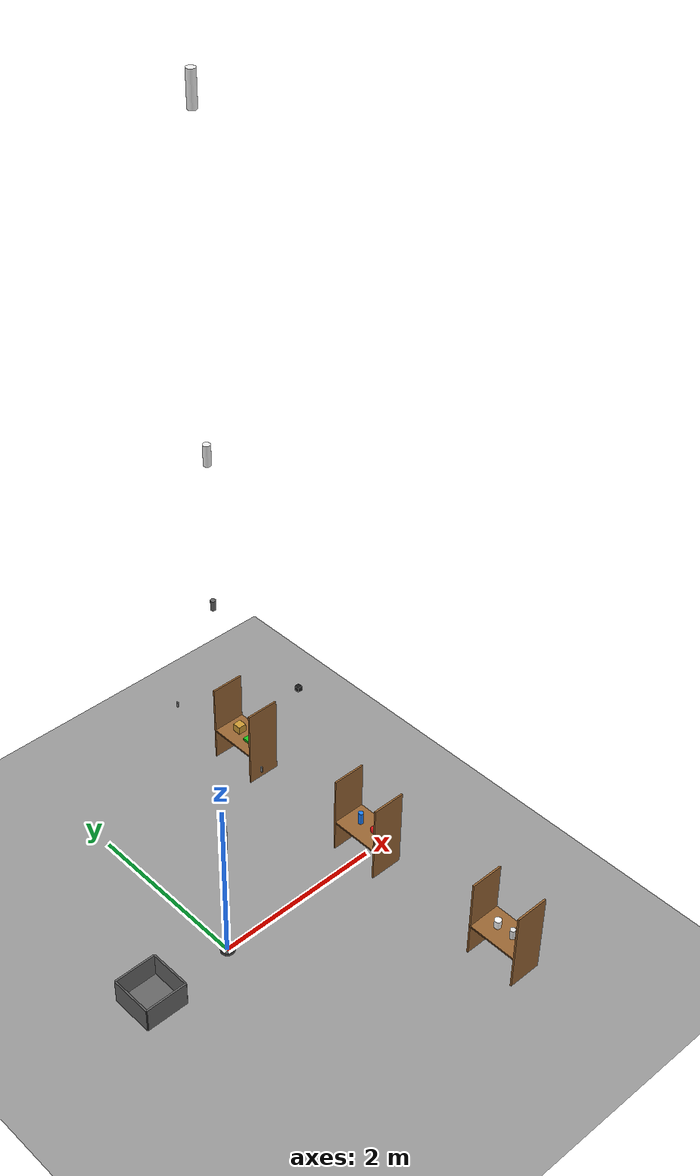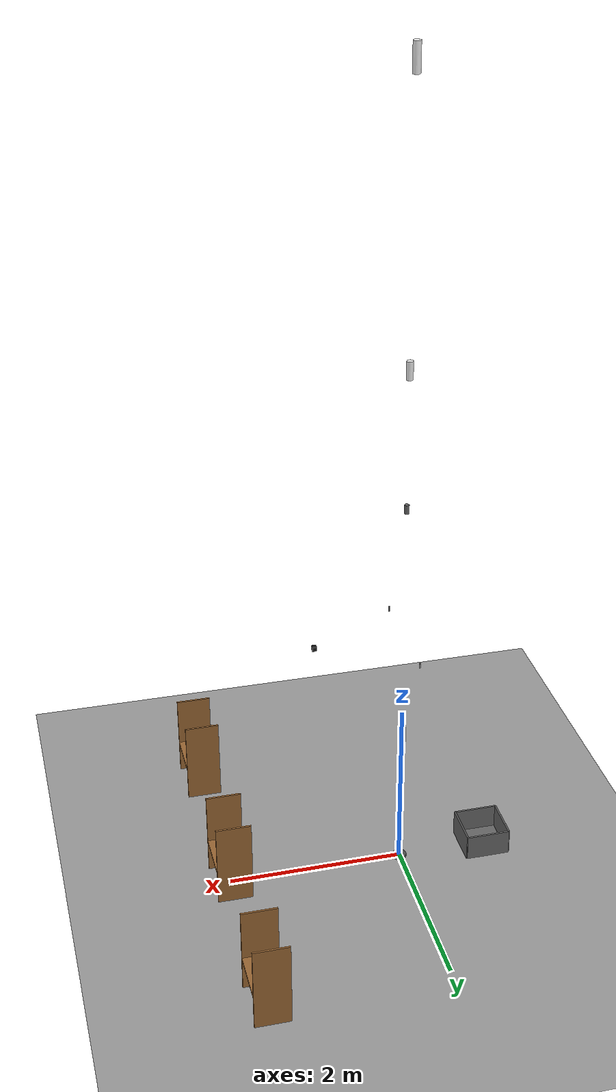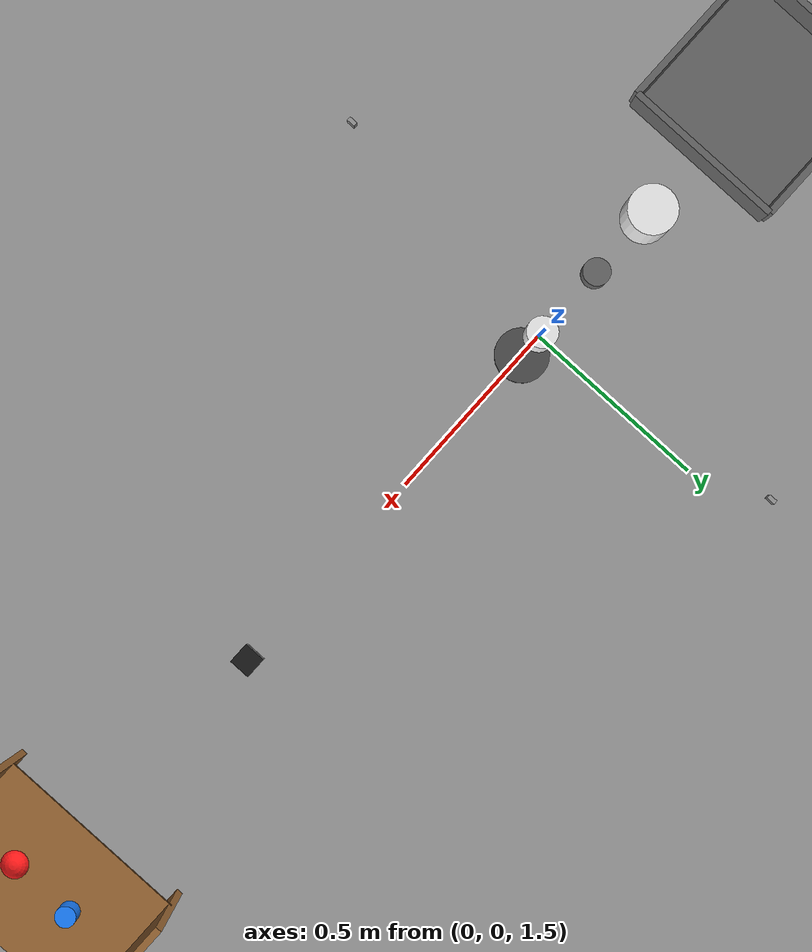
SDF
<?xml version="1.0" ?>
<sdf version="1.9">
  <world name="warehouse">

    <!-- Physics -->
    <physics name="1ms" type="dart">
      <max_step_size>0.001</max_step_size>
      <real_time_factor>1.0</real_time_factor>
    </physics>

    <!-- Plugins -->
    <plugin filename="gz-sim-physics-system" name="gz::sim::systems::Physics"/>
    <plugin filename="gz-sim-scene-broadcaster-system" name="gz::sim::systems::SceneBroadcaster"/>
    <plugin filename="gz-sim-sensors-system" name="gz::sim::systems::Sensors">
      <render_engine>ogre2</render_engine>
    </plugin>
    <plugin filename="gz-sim-user-commands-system" name="gz::sim::systems::UserCommands"/>

    <!-- Lighting -->
    <light type="directional" name="warehouse_light">
      <cast_shadows>true</cast_shadows>
      <pose>0 0 5 0 0 0</pose>
      <diffuse>0.9 0.9 0.9 1</diffuse>
      <specular>0.3 0.3 0.3 1</specular>
      <direction>-0.5 0.1 -0.9</direction>
    </light>

    <light type="point" name="fill_light">
      <pose>0 0 3 0 0 0</pose>
      <diffuse>0.4 0.4 0.4 1</diffuse>
      <specular>0.1 0.1 0.1 1</specular>
      <attenuation>
        <range>10</range>
        <constant>0.5</constant>
        <linear>0.01</linear>
        <quadratic>0.001</quadratic>
      </attenuation>
    </light>

    <!-- Ground plane -->
    <model name="ground_plane">
      <static>true</static>
      <link name="link">
        <collision name="collision">
          <geometry>
            <plane><normal>0 0 1</normal><size>10 10</size></plane>
          </geometry>
        </collision>
        <visual name="visual">
          <geometry>
            <plane><normal>0 0 1</normal><size>10 10</size></plane>
          </geometry>
          <material>
            <ambient>0.6 0.6 0.6 1</ambient>
            <diffuse>0.6 0.6 0.6 1</diffuse>
          </material>
        </visual>
      </link>
    </model>

    <!-- ==================== SHELF A ==================== -->
    <model name="shelf_A">
      <static>true</static>
      <pose>2.0 0.0 0.0 0 0 0</pose>
      <link name="shelf_body">
        <!-- Left side panel -->
        <visual name="left_panel">
          <pose>0 -0.3 0.5 0 0 0</pose>
          <geometry><box><size>0.4 0.02 1.0</size></box></geometry>
          <material><ambient>0.5 0.3 0.1 1</ambient><diffuse>0.6 0.4 0.2 1</diffuse></material>
        </visual>
        <collision name="left_panel_col">
          <pose>0 -0.3 0.5 0 0 0</pose>
          <geometry><box><size>0.4 0.02 1.0</size></box></geometry>
        </collision>
        <!-- Right side panel -->
        <visual name="right_panel">
          <pose>0 0.3 0.5 0 0 0</pose>
          <geometry><box><size>0.4 0.02 1.0</size></box></geometry>
          <material><ambient>0.5 0.3 0.1 1</ambient><diffuse>0.6 0.4 0.2 1</diffuse></material>
        </visual>
        <collision name="right_panel_col">
          <pose>0 0.3 0.5 0 0 0</pose>
          <geometry><box><size>0.4 0.02 1.0</size></box></geometry>
        </collision>
        <!-- Shelf surface -->
        <visual name="shelf_surface">
          <pose>0 0 0.4 0 0 0</pose>
          <geometry><box><size>0.4 0.6 0.02</size></box></geometry>
          <material><ambient>0.5 0.3 0.1 1</ambient><diffuse>0.6 0.4 0.2 1</diffuse></material>
        </visual>
        <collision name="shelf_surface_col">
          <pose>0 0 0.4 0 0 0</pose>
          <geometry><box><size>0.4 0.6 0.02</size></box></geometry>
        </collision>
      </link>
    </model>

    <!-- ==================== SHELF B ==================== -->
    <model name="shelf_B">
      <static>true</static>
      <pose>2.0 2.0 0.0 0 0 0</pose>
      <link name="shelf_body">
        <visual name="left_panel">
          <pose>0 -0.3 0.5 0 0 0</pose>
          <geometry><box><size>0.4 0.02 1.0</size></box></geometry>
          <material><ambient>0.5 0.3 0.1 1</ambient><diffuse>0.6 0.4 0.2 1</diffuse></material>
        </visual>
        <collision name="left_panel_col">
          <pose>0 -0.3 0.5 0 0 0</pose>
          <geometry><box><size>0.4 0.02 1.0</size></box></geometry>
        </collision>
        <visual name="right_panel">
          <pose>0 0.3 0.5 0 0 0</pose>
          <geometry><box><size>0.4 0.02 1.0</size></box></geometry>
          <material><ambient>0.5 0.3 0.1 1</ambient><diffuse>0.6 0.4 0.2 1</diffuse></material>
        </visual>
        <collision name="right_panel_col">
          <pose>0 0.3 0.5 0 0 0</pose>
          <geometry><box><size>0.4 0.02 1.0</size></box></geometry>
        </collision>
        <visual name="shelf_surface">
          <pose>0 0 0.4 0 0 0</pose>
          <geometry><box><size>0.4 0.6 0.02</size></box></geometry>
          <material><ambient>0.5 0.3 0.1 1</ambient><diffuse>0.6 0.4 0.2 1</diffuse></material>
        </visual>
        <collision name="shelf_surface_col">
          <pose>0 0 0.4 0 0 0</pose>
          <geometry><box><size>0.4 0.6 0.02</size></box></geometry>
        </collision>
      </link>
    </model>

    <!-- ==================== SHELF C ==================== -->
    <model name="shelf_C">
      <static>true</static>
      <pose>2.0 -2.0 0.0 0 0 0</pose>
      <link name="shelf_body">
        <visual name="left_panel">
          <pose>0 -0.3 0.5 0 0 0</pose>
          <geometry><box><size>0.4 0.02 1.0</size></box></geometry>
          <material><ambient>0.5 0.3 0.1 1</ambient><diffuse>0.6 0.4 0.2 1</diffuse></material>
        </visual>
        <collision name="left_panel_col">
          <pose>0 -0.3 0.5 0 0 0</pose>
          <geometry><box><size>0.4 0.02 1.0</size></box></geometry>
        </collision>
        <visual name="right_panel">
          <pose>0 0.3 0.5 0 0 0</pose>
          <geometry><box><size>0.4 0.02 1.0</size></box></geometry>
          <material><ambient>0.5 0.3 0.1 1</ambient><diffuse>0.6 0.4 0.2 1</diffuse></material>
        </visual>
        <collision name="right_panel_col">
          <pose>0 0.3 0.5 0 0 0</pose>
          <geometry><box><size>0.4 0.02 1.0</size></box></geometry>
        </collision>
        <visual name="shelf_surface">
          <pose>0 0 0.4 0 0 0</pose>
          <geometry><box><size>0.4 0.6 0.02</size></box></geometry>
          <material><ambient>0.5 0.3 0.1 1</ambient><diffuse>0.6 0.4 0.2 1</diffuse></material>
        </visual>
        <collision name="shelf_surface_col">
          <pose>0 0 0.4 0 0 0</pose>
          <geometry><box><size>0.4 0.6 0.02</size></box></geometry>
        </collision>
      </link>
    </model>

    <!-- ==================== OBJECTS ==================== -->

    <!-- Apple (red sphere) on Shelf A slot 0 -->
    <model name="apple">
      <pose>2.0 -0.1 0.45 0 0 0</pose>
      <link name="link">
        <inertial>
          <mass>0.2</mass>
          <inertia>
            <ixx>0.000128</ixx><iyy>0.000128</iyy><izz>0.000128</izz>
          </inertia>
        </inertial>
        <collision name="collision">
          <geometry><sphere><radius>0.04</radius></sphere></geometry>
          <surface>
            <friction><ode><mu>0.8</mu><mu2>0.8</mu2></ode></friction>
          </surface>
        </collision>
        <visual name="visual">
          <geometry><sphere><radius>0.04</radius></sphere></geometry>
          <material><ambient>1.0 0.0 0.0 1</ambient><diffuse>1.0 0.1 0.1 1</diffuse></material>
        </visual>
      </link>
    </model>

    <!-- Bottle (blue cylinder) on Shelf A slot 1 -->
    <model name="bottle">
      <pose>2.0 0.1 0.485 0 0 0</pose>
      <link name="link">
        <inertial>
          <mass>0.3</mass>
          <inertia>
            <ixx>0.000338</ixx><iyy>0.000338</iyy><izz>0.000135</izz>
          </inertia>
        </inertial>
        <collision name="collision">
          <geometry><cylinder><radius>0.03</radius><length>0.15</length></cylinder></geometry>
          <surface>
            <friction><ode><mu>0.6</mu><mu2>0.6</mu2></ode></friction>
          </surface>
        </collision>
        <visual name="visual">
          <geometry><cylinder><radius>0.03</radius><length>0.15</length></cylinder></geometry>
          <material><ambient>0.0 0.5 1.0 1</ambient><diffuse>0.1 0.5 1.0 1</diffuse></material>
        </visual>
      </link>
    </model>

    <!-- Book (green box) on Shelf B slot 0 -->
    <model name="book">
      <pose>2.0 1.9 0.425 0 0 0</pose>
      <link name="link">
        <inertial>
          <mass>0.4</mass>
          <inertia>
            <ixx>0.000347</ixx><iyy>0.000817</iyy><izz>0.001067</izz>
          </inertia>
        </inertial>
        <collision name="collision">
          <geometry><box><size>0.15 0.10 0.03</size></box></geometry>
          <surface>
            <friction><ode><mu>0.7</mu><mu2>0.7</mu2></ode></friction>
          </surface>
        </collision>
        <visual name="visual">
          <geometry><box><size>0.15 0.10 0.03</size></box></geometry>
          <material><ambient>0.0 0.7 0.0 1</ambient><diffuse>0.1 0.8 0.1 1</diffuse></material>
        </visual>
      </link>
    </model>

    <!-- Box (brown box) on Shelf B slot 1 -->
    <model name="box">
      <pose>2.0 2.1 0.46 0 0 0</pose>
      <link name="link">
        <inertial>
          <mass>0.5</mass>
          <inertia>
            <ixx>0.000833</ixx><iyy>0.000833</iyy><izz>0.000833</izz>
          </inertia>
        </inertial>
        <collision name="collision">
          <geometry><box><size>0.10 0.10 0.10</size></box></geometry>
          <surface>
            <friction><ode><mu>0.7</mu><mu2>0.7</mu2></ode></friction>
          </surface>
        </collision>
        <visual name="visual">
          <geometry><box><size>0.10 0.10 0.10</size></box></geometry>
          <material><ambient>0.8 0.6 0.2 1</ambient><diffuse>0.8 0.6 0.2 1</diffuse></material>
        </visual>
      </link>
    </model>

    <!-- Can (silver cylinder) on Shelf C slot 0 -->
    <model name="can">
      <pose>2.0 -2.1 0.47 0 0 0</pose>
      <link name="link">
        <inertial>
          <mass>0.35</mass>
          <inertia>
            <ixx>0.000223</ixx><iyy>0.000223</iyy><izz>0.000158</izz>
          </inertia>
        </inertial>
        <collision name="collision">
          <geometry><cylinder><radius>0.03</radius><length>0.12</length></cylinder></geometry>
          <surface>
            <friction><ode><mu>0.5</mu><mu2>0.5</mu2></ode></friction>
          </surface>
        </collision>
        <visual name="visual">
          <geometry><cylinder><radius>0.03</radius><length>0.12</length></cylinder></geometry>
          <material><ambient>0.8 0.8 0.8 1</ambient><diffuse>0.9 0.9 0.9 1</diffuse></material>
        </visual>
      </link>
    </model>

    <!-- Cup (white cylinder) on Shelf C slot 1 -->
    <model name="cup">
      <pose>2.0 -1.9 0.46 0 0 0</pose>
      <link name="link">
        <inertial>
          <mass>0.15</mass>
          <inertia>
            <ixx>0.000100</ixx><iyy>0.000100</iyy><izz>0.000120</izz>
          </inertia>
        </inertial>
        <collision name="collision">
          <geometry><cylinder><radius>0.04</radius><length>0.10</length></cylinder></geometry>
          <surface>
            <friction><ode><mu>0.6</mu><mu2>0.6</mu2></ode></friction>
          </surface>
        </collision>
        <visual name="visual">
          <geometry><cylinder><radius>0.04</radius><length>0.10</length></cylinder></geometry>
          <material><ambient>1.0 1.0 1.0 1</ambient><diffuse>1.0 1.0 1.0 1</diffuse></material>
        </visual>
      </link>
    </model>

    <!-- ==================== COLLECTION BOX ==================== -->
    <model name="collection_box">
      <static>true</static>
      <pose>-1.0 0.0 0.0 0 0 0</pose>
      <link name="link">
        <!-- Bottom -->
        <visual name="bottom">
          <pose>0 0 0.01 0 0 0</pose>
          <geometry><box><size>0.5 0.5 0.02</size></box></geometry>
          <material><ambient>0.3 0.3 0.3 1</ambient><diffuse>0.4 0.4 0.4 1</diffuse></material>
        </visual>
        <collision name="bottom_col">
          <pose>0 0 0.01 0 0 0</pose>
          <geometry><box><size>0.5 0.5 0.02</size></box></geometry>
        </collision>
        <!-- Front wall -->
        <visual name="front_wall">
          <pose>0.25 0 0.15 0 0 0</pose>
          <geometry><box><size>0.02 0.5 0.3</size></box></geometry>
          <material><ambient>0.3 0.3 0.3 1</ambient><diffuse>0.4 0.4 0.4 1</diffuse></material>
        </visual>
        <collision name="front_wall_col">
          <pose>0.25 0 0.15 0 0 0</pose>
          <geometry><box><size>0.02 0.5 0.3</size></box></geometry>
        </collision>
        <!-- Back wall -->
        <visual name="back_wall">
          <pose>-0.25 0 0.15 0 0 0</pose>
          <geometry><box><size>0.02 0.5 0.3</size></box></geometry>
          <material><ambient>0.3 0.3 0.3 1</ambient><diffuse>0.4 0.4 0.4 1</diffuse></material>
        </visual>
        <collision name="back_wall_col">
          <pose>-0.25 0 0.15 0 0 0</pose>
          <geometry><box><size>0.02 0.5 0.3</size></box></geometry>
        </collision>
        <!-- Left wall -->
        <visual name="left_wall">
          <pose>0 -0.25 0.15 0 0 0</pose>
          <geometry><box><size>0.5 0.02 0.3</size></box></geometry>
          <material><ambient>0.3 0.3 0.3 1</ambient><diffuse>0.4 0.4 0.4 1</diffuse></material>
        </visual>
        <collision name="left_wall_col">
          <pose>0 -0.25 0.15 0 0 0</pose>
          <geometry><box><size>0.5 0.02 0.3</size></box></geometry>
        </collision>
        <!-- Right wall -->
        <visual name="right_wall">
          <pose>0 0.25 0.15 0 0 0</pose>
          <geometry><box><size>0.5 0.02 0.3</size></box></geometry>
          <material><ambient>0.3 0.3 0.3 1</ambient><diffuse>0.4 0.4 0.4 1</diffuse></material>
        </visual>
        <collision name="right_wall_col">
          <pose>0 0.25 0.15 0 0 0</pose>
          <geometry><box><size>0.5 0.02 0.3</size></box></geometry>
        </collision>
      </link>
    </model>

    <!-- ==================== ROBOT ARM (Simplified 6-DOF) ==================== -->
    <model name="panda_arm">
      <pose>0.0 0.0 0.0 0 0 0</pose>

      <!-- Base -->
      <link name="base_link">
        <inertial>
          <mass>5.0</mass>
          <inertia>
            <ixx>0.01</ixx><iyy>0.01</iyy><izz>0.01</izz>
          </inertia>
        </inertial>
        <visual name="base_visual">
          <geometry><cylinder><radius>0.08</radius><length>0.05</length></cylinder></geometry>
          <material><ambient>0.2 0.2 0.2 1</ambient><diffuse>0.3 0.3 0.3 1</diffuse></material>
        </visual>
        <collision name="base_collision">
          <geometry><cylinder><radius>0.08</radius><length>0.05</length></cylinder></geometry>
        </collision>
      </link>

      <!-- Link 1 -->
      <link name="link1">
        <pose relative_to="joint1"/>
        <inertial>
          <pose>0 0 0.15 0 0 0</pose>
          <mass>2.0</mass>
          <inertia>
            <ixx>0.01</ixx><iyy>0.01</iyy><izz>0.002</izz>
          </inertia>
        </inertial>
        <visual name="visual">
          <pose>0 0 0.15 0 0 0</pose>
          <geometry><cylinder><radius>0.04</radius><length>0.3</length></cylinder></geometry>
          <material><ambient>0.9 0.9 0.9 1</ambient><diffuse>0.95 0.95 0.95 1</diffuse></material>
        </visual>
        <collision name="collision">
          <pose>0 0 0.15 0 0 0</pose>
          <geometry><cylinder><radius>0.04</radius><length>0.3</length></cylinder></geometry>
        </collision>
      </link>

      <joint name="joint1" type="revolute">
        <parent>base_link</parent>
        <child>link1</child>
        <pose>0 0 0.05 0 0 0</pose>
        <axis>
          <xyz>0 0 1</xyz>
          <limit><lower>-2.8973</lower><upper>2.8973</upper><effort>87</effort><velocity>2.175</velocity></limit>
        </axis>
      </joint>

      <!-- Link 2 -->
      <link name="link2">
        <pose relative_to="joint2"/>
        <inertial>
          <pose>0 0 0.15 0 0 0</pose>
          <mass>2.0</mass>
          <inertia>
            <ixx>0.01</ixx><iyy>0.01</iyy><izz>0.002</izz>
          </inertia>
        </inertial>
        <visual name="visual">
          <pose>0 0 0.15 0 0 0</pose>
          <geometry><cylinder><radius>0.04</radius><length>0.3</length></cylinder></geometry>
          <material><ambient>0.9 0.9 0.9 1</ambient><diffuse>0.95 0.95 0.95 1</diffuse></material>
        </visual>
        <collision name="collision">
          <pose>0 0 0.15 0 0 0</pose>
          <geometry><cylinder><radius>0.04</radius><length>0.3</length></cylinder></geometry>
        </collision>
      </link>

      <joint name="joint2" type="revolute">
        <parent>link1</parent>
        <child>link2</child>
        <pose>0 0 0.3 0 0 0</pose>
        <axis>
          <xyz>0 1 0</xyz>
          <limit><lower>-1.7628</lower><upper>1.7628</upper><effort>87</effort><velocity>2.175</velocity></limit>
        </axis>
      </joint>

      <!-- Link 3 -->
      <link name="link3">
        <pose relative_to="joint3"/>
        <inertial>
          <pose>0 0 0.1 0 0 0</pose>
          <mass>1.5</mass>
          <inertia>
            <ixx>0.005</ixx><iyy>0.005</iyy><izz>0.001</izz>
          </inertia>
        </inertial>
        <visual name="visual">
          <pose>0 0 0.1 0 0 0</pose>
          <geometry><cylinder><radius>0.035</radius><length>0.2</length></cylinder></geometry>
          <material><ambient>0.9 0.9 0.9 1</ambient><diffuse>0.95 0.95 0.95 1</diffuse></material>
        </visual>
        <collision name="collision">
          <pose>0 0 0.1 0 0 0</pose>
          <geometry><cylinder><radius>0.035</radius><length>0.2</length></cylinder></geometry>
        </collision>
      </link>

      <joint name="joint3" type="revolute">
        <parent>link2</parent>
        <child>link3</child>
        <pose>0 0 0.3 0 0 0</pose>
        <axis>
          <xyz>0 0 1</xyz>
          <limit><lower>-2.8973</lower><upper>2.8973</upper><effort>87</effort><velocity>2.175</velocity></limit>
        </axis>
      </joint>

      <!-- Link 4 -->
      <link name="link4">
        <pose relative_to="joint4"/>
        <inertial>
          <pose>0 0 0.1 0 0 0</pose>
          <mass>1.5</mass>
          <inertia>
            <ixx>0.005</ixx><iyy>0.005</iyy><izz>0.001</izz>
          </inertia>
        </inertial>
        <visual name="visual">
          <pose>0 0 0.1 0 0 0</pose>
          <geometry><cylinder><radius>0.035</radius><length>0.2</length></cylinder></geometry>
          <material><ambient>0.9 0.9 0.9 1</ambient><diffuse>0.95 0.95 0.95 1</diffuse></material>
        </visual>
        <collision name="collision">
          <pose>0 0 0.1 0 0 0</pose>
          <geometry><cylinder><radius>0.035</radius><length>0.2</length></cylinder></geometry>
        </collision>
      </link>

      <joint name="joint4" type="revolute">
        <parent>link3</parent>
        <child>link4</child>
        <pose>0 0 0.2 0 0 0</pose>
        <axis>
          <xyz>0 1 0</xyz>
          <limit><lower>-3.0718</lower><upper>-0.0698</upper><effort>87</effort><velocity>2.175</velocity></limit>
        </axis>
      </joint>

      <!-- Link 5 -->
      <link name="link5">
        <pose relative_to="joint5"/>
        <inertial>
          <pose>0 0 0.075 0 0 0</pose>
          <mass>1.0</mass>
          <inertia>
            <ixx>0.003</ixx><iyy>0.003</iyy><izz>0.001</izz>
          </inertia>
        </inertial>
        <visual name="visual">
          <pose>0 0 0.075 0 0 0</pose>
          <geometry><cylinder><radius>0.03</radius><length>0.15</length></cylinder></geometry>
          <material><ambient>0.9 0.9 0.9 1</ambient><diffuse>0.95 0.95 0.95 1</diffuse></material>
        </visual>
        <collision name="collision">
          <pose>0 0 0.075 0 0 0</pose>
          <geometry><cylinder><radius>0.03</radius><length>0.15</length></cylinder></geometry>
        </collision>
      </link>

      <joint name="joint5" type="revolute">
        <parent>link4</parent>
        <child>link5</child>
        <pose>0 0 0.2 0 0 0</pose>
        <axis>
          <xyz>0 0 1</xyz>
          <limit><lower>-2.8973</lower><upper>2.8973</upper><effort>12</effort><velocity>2.61</velocity></limit>
        </axis>
      </joint>

      <!-- Link 6 (end-effector mount) -->
      <link name="link6">
        <pose relative_to="joint6"/>
        <inertial>
          <pose>0 0 0.05 0 0 0</pose>
          <mass>0.5</mass>
          <inertia>
            <ixx>0.001</ixx><iyy>0.001</iyy><izz>0.0005</izz>
          </inertia>
        </inertial>
        <visual name="visual">
          <pose>0 0 0.05 0 0 0</pose>
          <geometry><cylinder><radius>0.025</radius><length>0.1</length></cylinder></geometry>
          <material><ambient>0.3 0.3 0.3 1</ambient><diffuse>0.4 0.4 0.4 1</diffuse></material>
        </visual>
        <collision name="collision">
          <pose>0 0 0.05 0 0 0</pose>
          <geometry><cylinder><radius>0.025</radius><length>0.1</length></cylinder></geometry>
        </collision>
      </link>

      <joint name="joint6" type="revolute">
        <parent>link5</parent>
        <child>link6</child>
        <pose>0 0 0.15 0 0 0</pose>
        <axis>
          <xyz>0 1 0</xyz>
          <limit><lower>-0.0175</lower><upper>3.7525</upper><effort>12</effort><velocity>2.61</velocity></limit>
        </axis>
      </joint>

      <!-- Gripper (simplified as a prismatic joint pair) -->
      <link name="gripper_left">
        <pose relative_to="gripper_joint_left"/>
        <inertial>
          <mass>0.1</mass>
          <inertia>
            <ixx>0.0001</ixx><iyy>0.0001</iyy><izz>0.0001</izz>
          </inertia>
        </inertial>
        <visual name="visual">
          <geometry><box><size>0.01 0.02 0.06</size></box></geometry>
          <material><ambient>0.5 0.5 0.5 1</ambient><diffuse>0.6 0.6 0.6 1</diffuse></material>
        </visual>
        <collision name="collision">
          <geometry><box><size>0.01 0.02 0.06</size></box></geometry>
        </collision>
      </link>

      <joint name="gripper_joint_left" type="prismatic">
        <parent>link6</parent>
        <child>gripper_left</child>
        <pose>0 -0.02 0.1 0 0 0</pose>
        <axis>
          <xyz>0 1 0</xyz>
          <limit><lower>0</lower><upper>0.04</upper><effort>20</effort><velocity>0.2</velocity></limit>
        </axis>
      </joint>

      <link name="gripper_right">
        <pose relative_to="gripper_joint_right"/>
        <inertial>
          <mass>0.1</mass>
          <inertia>
            <ixx>0.0001</ixx><iyy>0.0001</iyy><izz>0.0001</izz>
          </inertia>
        </inertial>
        <visual name="visual">
          <geometry><box><size>0.01 0.02 0.06</size></box></geometry>
          <material><ambient>0.5 0.5 0.5 1</ambient><diffuse>0.6 0.6 0.6 1</diffuse></material>
        </visual>
        <collision name="collision">
          <geometry><box><size>0.01 0.02 0.06</size></box></geometry>
        </collision>
      </link>

      <joint name="gripper_joint_right" type="prismatic">
        <parent>link6</parent>
        <child>gripper_right</child>
        <pose>0 0.02 0.1 0 0 0</pose>
        <axis>
          <xyz>0 -1 0</xyz>
          <limit><lower>0</lower><upper>0.04</upper><effort>20</effort><velocity>0.2</velocity></limit>
        </axis>
      </joint>

      <!-- Joint position controller plugin -->
      <plugin filename="gz-sim-joint-position-controller-system"
              name="gz::sim::systems::JointPositionController">
        <joint_name>joint1</joint_name>
        <p_gain>100</p_gain>
        <i_gain>0.1</i_gain>
        <d_gain>10</d_gain>
      </plugin>
      <plugin filename="gz-sim-joint-position-controller-system"
              name="gz::sim::systems::JointPositionController">
        <joint_name>joint2</joint_name>
        <p_gain>100</p_gain>
        <i_gain>0.1</i_gain>
        <d_gain>10</d_gain>
      </plugin>
      <plugin filename="gz-sim-joint-position-controller-system"
              name="gz::sim::systems::JointPositionController">
        <joint_name>joint3</joint_name>
        <p_gain>100</p_gain>
        <i_gain>0.1</i_gain>
        <d_gain>10</d_gain>
      </plugin>
      <plugin filename="gz-sim-joint-position-controller-system"
              name="gz::sim::systems::JointPositionController">
        <joint_name>joint4</joint_name>
        <p_gain>100</p_gain>
        <i_gain>0.1</i_gain>
        <d_gain>10</d_gain>
      </plugin>
      <plugin filename="gz-sim-joint-position-controller-system"
              name="gz::sim::systems::JointPositionController">
        <joint_name>joint5</joint_name>
        <p_gain>50</p_gain>
        <i_gain>0.1</i_gain>
        <d_gain>5</d_gain>
      </plugin>
      <plugin filename="gz-sim-joint-position-controller-system"
              name="gz::sim::systems::JointPositionController">
        <joint_name>joint6</joint_name>
        <p_gain>50</p_gain>
        <i_gain>0.1</i_gain>
        <d_gain>5</d_gain>
      </plugin>
      <plugin filename="gz-sim-joint-position-controller-system"
              name="gz::sim::systems::JointPositionController">
        <joint_name>gripper_joint_left</joint_name>
        <p_gain>100</p_gain>
        <i_gain>0.1</i_gain>
        <d_gain>1</d_gain>
      </plugin>
      <plugin filename="gz-sim-joint-position-controller-system"
              name="gz::sim::systems::JointPositionController">
        <joint_name>gripper_joint_right</joint_name>
        <p_gain>100</p_gain>
        <i_gain>0.1</i_gain>
        <d_gain>1</d_gain>
      </plugin>

      <!-- Joint state publisher -->
      <plugin filename="gz-sim-joint-state-publisher-system"
              name="gz::sim::systems::JointStatePublisher"/>
    </model>

    <!-- ==================== OVERHEAD CAMERA ==================== -->
    <model name="overhead_camera">
      <static>true</static>
      <pose>1.0 0.0 3.0 0 1.5708 0</pose>
      <link name="link">
        <visual name="visual">
          <geometry><box><size>0.05 0.05 0.05</size></box></geometry>
          <material><ambient>0 0 0 1</ambient><diffuse>0.1 0.1 0.1 1</diffuse></material>
        </visual>
        <sensor name="camera" type="camera">
          <always_on>1</always_on>
          <update_rate>30</update_rate>
          <camera>
            <horizontal_fov>1.5708</horizontal_fov>
            <image>
              <width>640</width>
              <height>480</height>
              <format>R8G8B8</format>
            </image>
            <clip>
              <near>0.1</near>
              <far>10</far>
            </clip>
          </camera>
          <topic>camera</topic>
        </sensor>
      </link>
    </model>

  </world>
</sdf>
